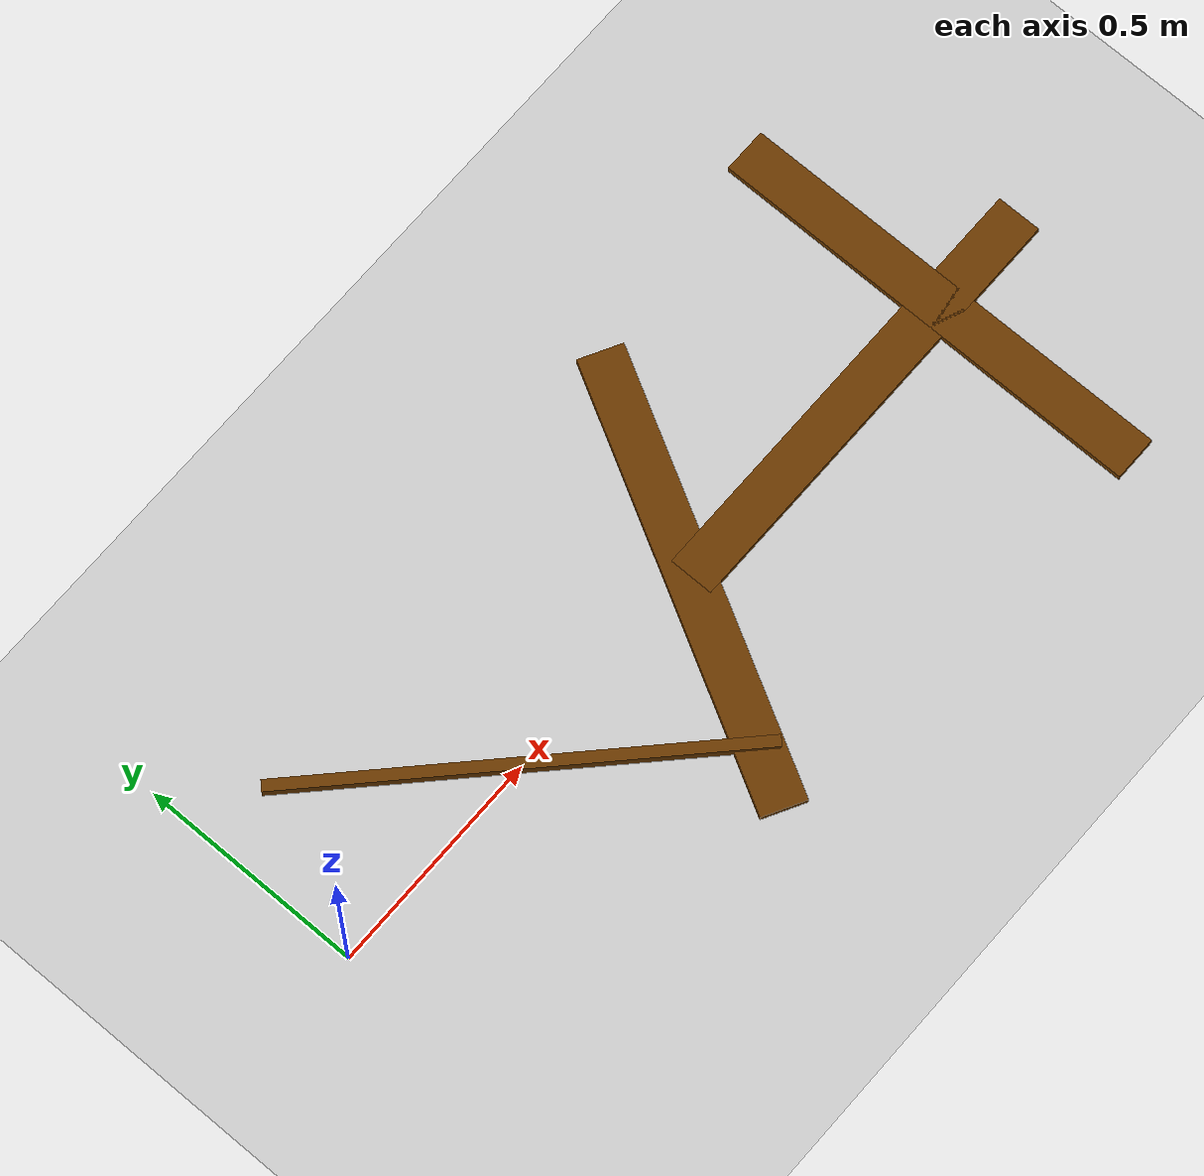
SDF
<?xml version="1.0" ?>
<sdf version="1.5">
    <world name="default">

        <physics type="ode">
        <max_step_size>0.0005</max_step_size>
        <real_time_factor>1</real_time_factor>
        <real_time_update_rate>2000</real_time_update_rate>
        <gravity>0 0 -9.81</gravity>
            <ode>
                <solver>
                <type>quick</type>
                <iters>50</iters>
                <sor>1.3</sor>
                </solver>
                <constraints>
                <cfm>0.0</cfm>
                <erp>0.2</erp>
                <contact_max_correcting_vel>10.0</contact_max_correcting_vel>
                <contact_surface_layer>0.001</contact_surface_layer>
                </constraints>
            </ode>
        </physics>

        <scene>
        <sky>
            <clouds>
                <speed>12</speed>
            </clouds>
        </sky>
        </scene>
        <!-- A global light source -->
        <include>
            <uri>model://sun</uri>
        </include>
        <!-- A ground plane -->
        <include>
            <uri>model://ground_plane</uri>
        </include>
        <!-- environment blocks, obstacles or stairs -->
        <model name="static_environment">
        <static>true</static>

            <link name="base">
                <pose>0.5 0 0.00 0 0 0.8</pose>
                <collision name="base_collision">
                    <geometry>
                        <box>
                            <size>0.025 1 0.05</size>
                        </box>
                    </geometry>
                </collision>
                <visual name="base_visual">
                    <geometry>
                        <box>
                            <size>0.025 1 0.05</size>
                        </box>
                    </geometry>
                    <material>
                        <ambient>0.2 0.2 0.2 1.0</ambient>
                        <diffuse>.421 0.225 0.0 1.0</diffuse>
                    </material>
                </visual>
            </link>

            <link name="base1">
                <pose>1 0 0.00 0 0 -0.5</pose>
                <collision name="base_collision">
                    <geometry>
                        <box>
                            <size>0.1 1 0.03</size>
                        </box>
                    </geometry>
                </collision>
                <visual name="base_visual">
                    <geometry>
                        <box>
                            <size>0.1 1 0.03</size>
                        </box>
                    </geometry>
                    <material>
                        <ambient>0.2 0.2 0.2 1.0</ambient>
                        <diffuse>.421 0.225 0.0 1.0</diffuse>
                    </material>
                </visual>
            </link>

            <link name="base2">
                <pose>1.75 0 0.00 0 0 0</pose>
                <collision name="base_collision">
                    <geometry>
                        <box>
                            <size>0.1 1 0.03</size>
                        </box>
                    </geometry>
                </collision>
                <visual name="base_visual">
                    <geometry>
                        <box>
                            <size>0.1 1 0.03</size>
                        </box>
                    </geometry>
                    <material>
                        <ambient>0.2 0.2 0.2 1.0</ambient>
                        <diffuse>.421 0.225 0.0 1.0</diffuse>
                    </material>
                </visual>
            </link>
            <link name="base3">
                <pose>1.5 0 0.00 0 0 1.57</pose>
                <collision name="base_collision">
                    <geometry>
                        <box>
                            <size>0.1 1 0.03</size>
                        </box>
                    </geometry>
                </collision>
                <visual name="base_visual">
                    <geometry>
                        <box>
                            <size>0.1 1 0.03</size>
                        </box>
                    </geometry>
                    <material>
                        <ambient>0.2 0.2 0.2 1.0</ambient>
                        <diffuse>.421 0.225 0.0 1.0</diffuse>
                    </material>
                </visual>
            </link>

        </model>

    </world>
</sdf>
